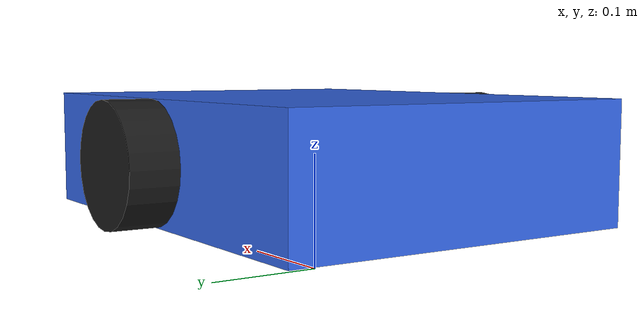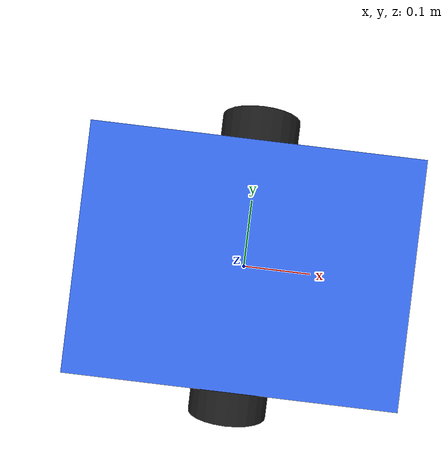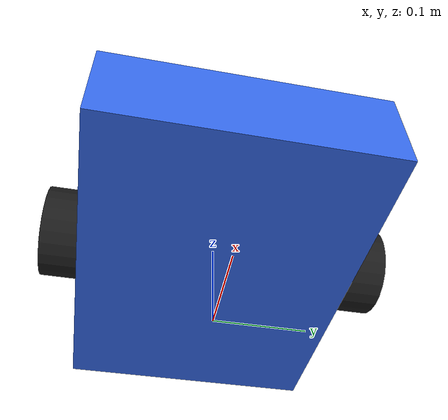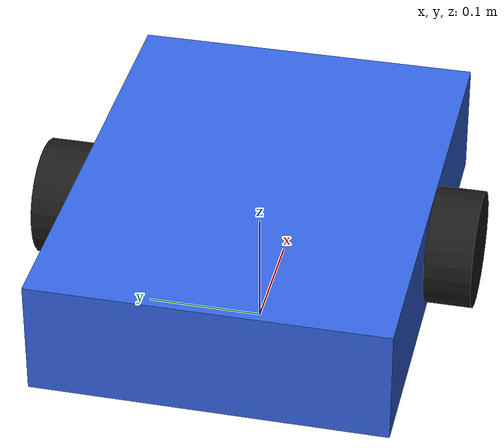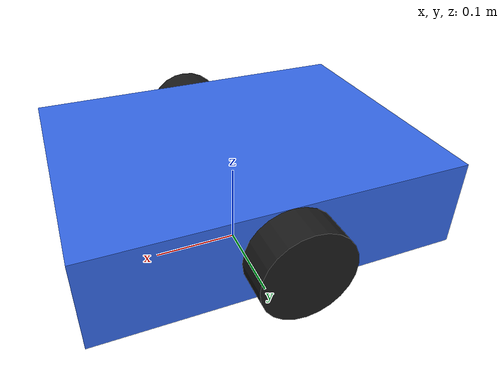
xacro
<?xml version="1.0"?>

<robot name="roborack"
       xmlns:xacro="http://www.ros.org/wiki/xacro">

  <xacro:include filename="$(find roborack_base)/urdf/base.xacro"/>

  <xacro:include filename="$(find roborack_base)/urdf/wheels.xacro"/>

  <xacro:include filename="$(find roborack_base)/urdf/ros2_control.xacro"/>

</robot>

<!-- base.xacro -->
<robot xmlns:xacro="http://www.ros.org/wiki/xacro">
  <link name="base_footprint"/>
  <joint name="base_footprint_joint" type="fixed">
    <parent link="base_footprint"/>
    <child link="base_link"/>
    <origin xyz="0 0 0.05"/>
</joint>

  <link name="base_link">

    <visual>
      <origin xyz="0 0 0.05"/>
      <geometry>
        <box size="0.40 0.30 0.10"/>
      </geometry>
      <material name="blue">
        <color rgba="0.2 0.4 0.9 1.0"/>
      </material>
    </visual>

    <collision>
      <origin xyz="0 0 0.05"/>
      <geometry>
        <box size="0.40 0.30 0.10"/>
      </geometry>
    </collision>

    <inertial>
      <origin xyz="0 0 0.05"/>
      <mass value="10.0"/>
      <inertia
        ixx="0.104"
        ixy="0.0"
        ixz="0.0"
        iyy="0.167"
        iyz="0.0"
        izz="0.208"/>
    </inertial>

  </link>

</robot>

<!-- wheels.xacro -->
<robot xmlns:xacro="http://www.ros.org/wiki/xacro">

  <!-- LEFT WHEEL -->

  <link name="left_wheel">

    <visual>
      <origin rpy="1.5708 0 0"/>
      <geometry>
        <cylinder radius="0.05" length="0.04"/>
      </geometry>

      <material name="black">
        <color rgba="0.1 0.1 0.1 1"/>
      </material>
    </visual>

    <collision>
      <origin rpy="1.5708 0 0"/>
      <geometry>
        <cylinder radius="0.05" length="0.04"/>
      </geometry>
    </collision>

    <inertial>
      <mass value="0.5"/>

      <inertia
        ixx="0.001"
        ixy="0"
        ixz="0"
        iyy="0.001"
        iyz="0"
        izz="0.001"/>
    </inertial>

  </link>

  <joint name="left_wheel_joint" type="continuous">

    <parent link="base_link"/>
    <child link="left_wheel"/>

    <origin xyz="0 0.17 0.05"/>

    <axis xyz="0 1 0"/>

  </joint>

  <!-- RIGHT WHEEL -->

  <link name="right_wheel">

    <visual>
      <origin rpy="1.5708 0 0"/>
      <geometry>
        <cylinder radius="0.05" length="0.04"/>
      </geometry>

      <material name="black">
        <color rgba="0.1 0.1 0.1 1"/>
      </material>
    </visual>

    <collision>
      <origin rpy="1.5708 0 0"/>
      <geometry>
        <cylinder radius="0.05" length="0.04"/>
      </geometry>
    </collision>

    <inertial>
      <mass value="0.5"/>

      <inertia
        ixx="0.001"
        ixy="0"
        ixz="0"
        iyy="0.001"
        iyz="0"
        izz="0.001"/>
    </inertial>

  </link>

  <joint name="right_wheel_joint" type="continuous">

    <parent link="base_link"/>
    <child link="right_wheel"/>

    <origin xyz="0 -0.17 0.05"/>

    <axis xyz="0 1 0"/>

  </joint>

</robot>
